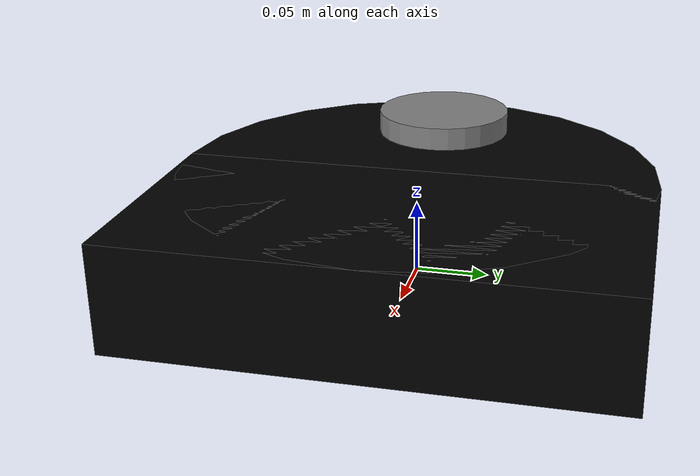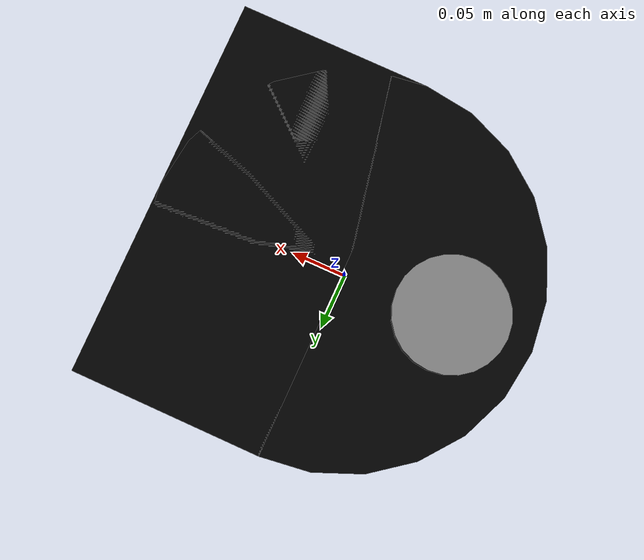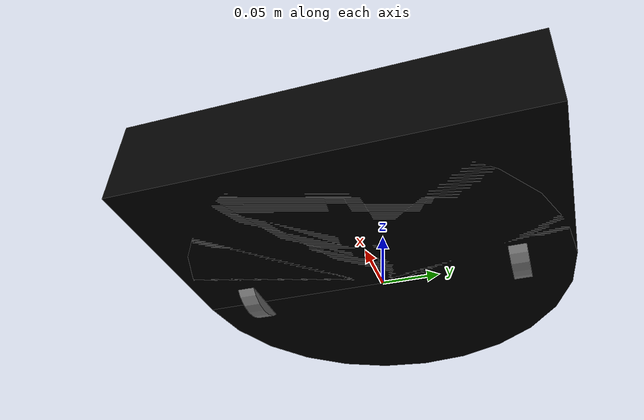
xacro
<?xml version="1.0"?>
<robot xmlns:xacro="http://ros.org/wiki/xacro" name="neato">
    <!-- bodyRadius: half of body width -->
    <!-- bodyHeight: body height from base to top, excluding casters and wheels -->
    <!-- laserRadius: radius of outermost laser body -->
    <!-- laserHeight: distance from of top of body to top of laser body -->
    <!-- laserRearOffset: distance from rear of body to rear of laser -->
    <!-- groundClearance: body to ground at rest -->
    <!-- wheelTrack: distance between wheel centerline -->
    <!-- wheelZOffset: distance from bottom of body to center of wheel at rest -->
    <xacro:property name="bodyRadius" value="0.165" />
    <xacro:property name="bodyHeight" value="0.074" />
    <xacro:property name="laserRadius" value="0.048" />
    <xacro:property name="laserHeight" value="0.016" />
    <xacro:property name="laserRearOffset" value="0.024" />
    <xacro:property name="groundClearance" value="0.0095" />
    <xacro:property name="wheelRadius" value="${0.075/2}" />
    <xacro:property name="wheelWidth" value="0.015" />
    <xacro:property name="wheelTrack" value="0.238" />
    <xacro:property name="wheelZOffset" value="${wheelRadius-groundClearance}" />

    <material name="black">
        <color rgba="0 0 0 1" />
    </material>

    <material name="grey">
        <color rgba=".5 .5 .5 1" />
    </material>

    <link name="base_link"></link>

    <link name="base_footprint">
        <visual>
            <origin xyz="${bodyRadius/2} 0 0" rpy="0 0 -1.5708" />
            <geometry>
                <box size="${bodyRadius*2} ${bodyRadius} ${bodyHeight}" />
            </geometry>
            <material name="black" />
        </visual>
        <visual>
            <geometry>
                <cylinder length="${bodyHeight}" radius="${bodyRadius}" />
            </geometry>
            <material name="black" />
            <!-- origin xyz="0 0 0" rpy="0 0 1.5708" /-->
        </visual>
    </link>

    <joint name="body_joint" type="fixed">
        <origin xyz="0 0 ${bodyHeight/2}" rpy="0 0 0" />
        <child link="base_footprint" />
        <parent link="base_link" />
    </joint>

    <link name="sensor_laser">
        <visual>
            <geometry>
                <cylinder radius="${laserRadius}" length="${laserHeight}" />
            </geometry>
            <material name="grey" />
        </visual>
        <collision>
            <geometry>
                <cylinder radius="${laserRadius}" length="${laserHeight}" />
            </geometry>
        </collision>
    </link>
    <joint name="sensor_laser_joint" type="fixed">
        <origin xyz="${-(bodyRadius - laserRearOffset - laserRadius)} 0 ${(laserHeight/2) + bodyHeight}" rpy="0 0 0" />
        <parent link="base_link" />
        <child link="sensor_laser" />
    </joint>

    <xacro:macro name="wheel" params="prefix reflect">
        <link name="wheel_${prefix}">
            <visual>
                <origin xyz="0 0 0" rpy="${pi/2} 0 0" />
                <geometry>
                    <cylinder length="${wheelWidth}" radius="${wheelRadius}" />
                </geometry>
                <material name="grey" />
            </visual>
            <collision>
                <origin xyz="0 0 0" rpy="${pi/2} 0 0" />
                <geometry>
                    <cylinder length="${wheelWidth}" radius="${wheelRadius}" />
                </geometry>
            </collision>
        </link>

        <joint name="wheel_${prefix}_joint" type="continuous">
            <axis xyz="0 1 0" rpy="0 0 0" />
            <parent link="base_link" />
            <child link="wheel_${prefix}" />
            <origin xyz="0 ${reflect * wheelTrack/2} ${wheelZOffset}" rpy="0 0 0" />
        </joint>
    </xacro:macro>

    <xacro:wheel prefix="left" reflect="-1" />
    <xacro:wheel prefix="right" reflect="1" />
</robot>
